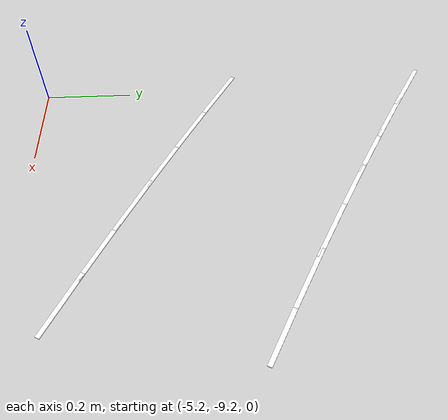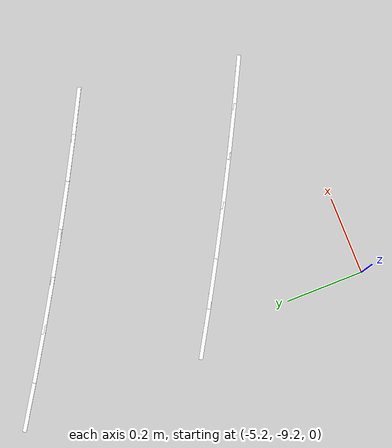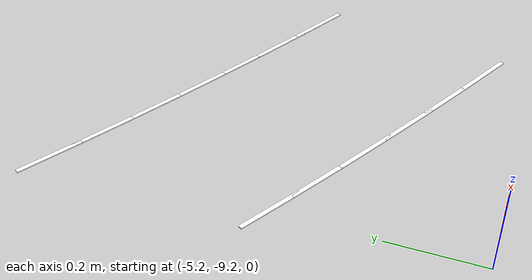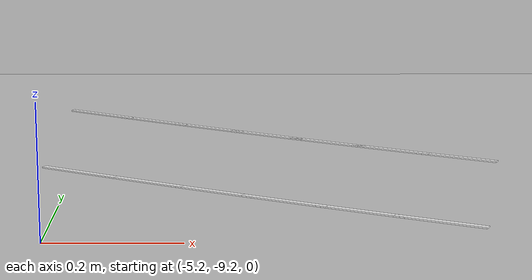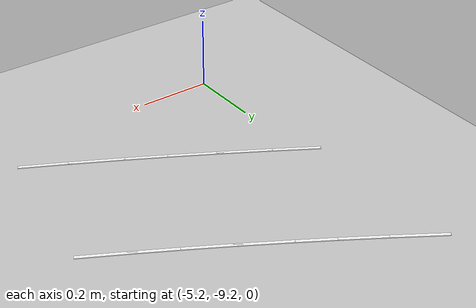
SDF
<sdf version="1.7">
 <world name="default">
  <model name="ground_plane">
   <static>1</static>
   <link name="link">
    <collision name="collision">
     <geometry><plane><normal>0 0 1</normal><size>100 100</size></plane></geometry>
     <surface>
      <contact><collide_bitmask>65535</collide_bitmask></contact>
      <friction><ode><mu>100</mu><mu2>50</mu2></ode></friction>
     </surface>
    </collision>
    <visual name="visual">
     <cast_shadows>0</cast_shadows>
     <geometry><plane><normal>0 0 1</normal><size>100 100</size></plane></geometry>
     <material>
      <script><uri>file://media/materials/scripts/gazebo.material</uri><name>Gazebo/Grey</name></script>
     </material>
    </visual>
   </link>
  </model>
  <model name="lane_line_left_330">
   <static>1</static>
   <link name="link">
    <pose>0 0 -0.004 0 -0 0</pose>
    <visual name="visual">
     <geometry><box><size>0.1457 0.01 0.01</size></box></geometry>
     <material><ambient>1 1 1 1</ambient><diffuse>1 1 1 1</diffuse></material>
    </visual>
    <collision name="collision"><geometry><box><size>0.1457 0.01 0.01</size></box></geometry></collision>
   </link>
   <pose>-5.1989 -8.30708 0 0 0 -0.559203</pose>
  </model>
  <model name="lane_line_left_331">
   <static>1</static>
   <link name="link">
    <pose>0 0 -0.004 0 -0 0</pose>
    <visual name="visual">
     <geometry><box><size>0.1457 0.01 0.01</size></box></geometry>
     <material><ambient>1 1 1 1</ambient><diffuse>1 1 1 1</diffuse></material>
    </visual>
    <collision name="collision"><geometry><box><size>0.1457 0.01 0.01</size></box></geometry></collision>
   </link>
   <pose>-5.09411 -8.37175 0 0 0 -0.546637</pose>
  </model>
  <model name="lane_line_left_332">
   <static>1</static>
   <link name="link">
    <pose>0 0 -0.004 0 -0 0</pose>
    <visual name="visual">
     <geometry><box><size>0.1457 0.01 0.01</size></box></geometry>
     <material><ambient>1 1 1 1</ambient><diffuse>1 1 1 1</diffuse></material>
    </visual>
    <collision name="collision"><geometry><box><size>0.1457 0.01 0.01</size></box></geometry></collision>
   </link>
   <pose>-4.98851 -8.4351 0 0 0 -0.534071</pose>
  </model>
  <model name="lane_line_right_332">
   <static>1</static>
   <link name="link">
    <pose>0 0 -0.004 0 -0 0</pose>
    <visual name="visual">
     <geometry><box><size>0.1457 0.01 0.01</size></box></geometry>
     <material><ambient>1 1 1 1</ambient><diffuse>1 1 1 1</diffuse></material>
    </visual>
    <collision name="collision"><geometry><box><size>0.1457 0.01 0.01</size></box></geometry></collision>
   </link>
   <pose>-5.19212 -8.7794 0 0 0 -0.534071</pose>
  </model>
  <model name="lane_line_left_333">
   <static>1</static>
   <link name="link">
    <pose>0 0 -0.004 0 -0 0</pose>
    <visual name="visual">
     <geometry><box><size>0.1457 0.01 0.01</size></box></geometry>
     <material><ambient>1 1 1 1</ambient><diffuse>1 1 1 1</diffuse></material>
    </visual>
    <collision name="collision"><geometry><box><size>0.1457 0.01 0.01</size></box></geometry></collision>
   </link>
   <pose>-4.88212 -8.49712 0 0 0 -0.521504</pose>
  </model>
  <model name="lane_line_right_333">
   <static>1</static>
   <link name="link">
    <pose>0 0 -0.004 0 -0 0</pose>
    <visual name="visual">
     <geometry><box><size>0.1457 0.01 0.01</size></box></geometry>
     <material><ambient>1 1 1 1</ambient><diffuse>1 1 1 1</diffuse></material>
    </visual>
    <collision name="collision"><geometry><box><size>0.1457 0.01 0.01</size></box></geometry></collision>
   </link>
   <pose>-5.08139 -8.84395 0 0 0 -0.521504</pose>
  </model>
  <model name="lane_line_left_334">
   <static>1</static>
   <link name="link">
    <pose>0 0 -0.004 0 -0 0</pose>
    <visual name="visual">
     <geometry><box><size>0.1457 0.01 0.01</size></box></geometry>
     <material><ambient>1 1 1 1</ambient><diffuse>1 1 1 1</diffuse></material>
    </visual>
    <collision name="collision"><geometry><box><size>0.1457 0.01 0.01</size></box></geometry></collision>
   </link>
   <pose>-4.77496 -8.5578 0 0 0 -0.508938</pose>
  </model>
  <model name="lane_line_right_334">
   <static>1</static>
   <link name="link">
    <pose>0 0 -0.004 0 -0 0</pose>
    <visual name="visual">
     <geometry><box><size>0.1457 0.01 0.01</size></box></geometry>
     <material><ambient>1 1 1 1</ambient><diffuse>1 1 1 1</diffuse></material>
    </visual>
    <collision name="collision"><geometry><box><size>0.1457 0.01 0.01</size></box></geometry></collision>
   </link>
   <pose>-4.96986 -8.9071 0 0 0 -0.508938</pose>
  </model>
  <model name="lane_line_left_335">
   <static>1</static>
   <link name="link">
    <pose>0 0 -0.004 0 -0 0</pose>
    <visual name="visual">
     <geometry><box><size>0.1457 0.01 0.01</size></box></geometry>
     <material><ambient>1 1 1 1</ambient><diffuse>1 1 1 1</diffuse></material>
    </visual>
    <collision name="collision"><geometry><box><size>0.1457 0.01 0.01</size></box></geometry></collision>
   </link>
   <pose>-4.66704 -8.61713 0 0 0 -0.496372</pose>
  </model>
  <model name="lane_line_right_335">
   <static>1</static>
   <link name="link">
    <pose>0 0 -0.004 0 -0 0</pose>
    <visual name="visual">
     <geometry><box><size>0.1457 0.01 0.01</size></box></geometry>
     <material><ambient>1 1 1 1</ambient><diffuse>1 1 1 1</diffuse></material>
    </visual>
    <collision name="collision"><geometry><box><size>0.1457 0.01 0.01</size></box></geometry></collision>
   </link>
   <pose>-4.85754 -8.96885 0 0 0 -0.496372</pose>
  </model>
  <model name="lane_line_left_336">
   <static>1</static>
   <link name="link">
    <pose>0 0 -0.004 0 -0 0</pose>
    <visual name="visual">
     <geometry><box><size>0.1457 0.01 0.01</size></box></geometry>
     <material><ambient>1 1 1 1</ambient><diffuse>1 1 1 1</diffuse></material>
    </visual>
    <collision name="collision"><geometry><box><size>0.1457 0.01 0.01</size></box></geometry></collision>
   </link>
   <pose>-4.55839 -8.67509 0 0 0 -0.483805</pose>
  </model>
  <model name="lane_line_right_336">
   <static>1</static>
   <link name="link">
    <pose>0 0 -0.004 0 -0 0</pose>
    <visual name="visual">
     <geometry><box><size>0.1457 0.01 0.01</size></box></geometry>
     <material><ambient>1 1 1 1</ambient><diffuse>1 1 1 1</diffuse></material>
    </visual>
    <collision name="collision"><geometry><box><size>0.1457 0.01 0.01</size></box></geometry></collision>
   </link>
   <pose>-4.74445 -9.02918 0 0 0 -0.483805</pose>
  </model>
  <model name="lane_line_right_337">
   <static>1</static>
   <link name="link">
    <pose>0 0 -0.004 0 -0 0</pose>
    <visual name="visual">
     <geometry><box><size>0.1457 0.01 0.01</size></box></geometry>
     <material><ambient>1 1 1 1</ambient><diffuse>1 1 1 1</diffuse></material>
    </visual>
    <collision name="collision"><geometry><box><size>0.1457 0.01 0.01</size></box></geometry></collision>
   </link>
   <pose>-4.63061 -9.08809 0 0 0 -0.471239</pose>
  </model>
 </world>
</sdf>
